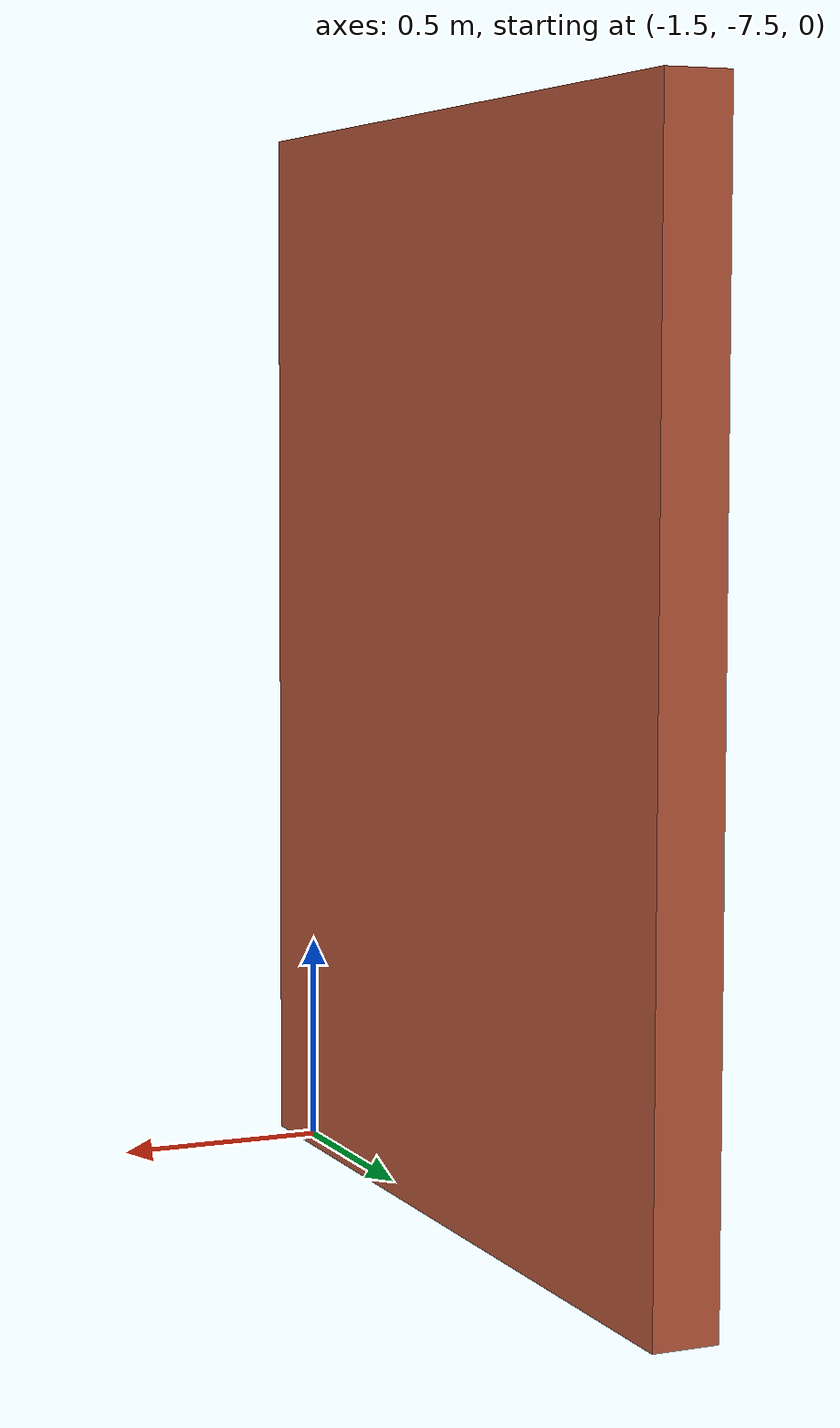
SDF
<?xml version='1.0'?>
<sdf version='1.7'>
  <model name='ob_wall_2'>
    <pose>-0.802 -3.805 0 0 -0 0</pose>
    <link name='Wall_20'>
      <collision name='Wall_20_Collision'>
        <geometry>
          <box>
            <size>2 0.15 2.5</size>
          </box>
        </geometry>
        <pose>0 0 1.25 0 -0 0</pose>
      </collision>
      <visual name='Wall_20_Visual'>
        <pose>0 0 1.25 0 -0 0</pose>
        <geometry>
          <box>
            <size>2 0.15 2.5</size>
          </box>
        </geometry>
        <material>
          <script>
            <uri>file://media/materials/scripts/gazebo.material</uri>
            <name>Gazebo/Bricks</name>
          </script>
          <ambient>0.996078 0.47451 0.0196078 1</ambient>
        </material>
        <meta>
          <layer>0</layer>
        </meta>
      </visual>
      <pose>-0.727 -2.805 0 0 -0 -1.5708</pose>
    </link>
    <static>1</static>
  </model>
</sdf>
